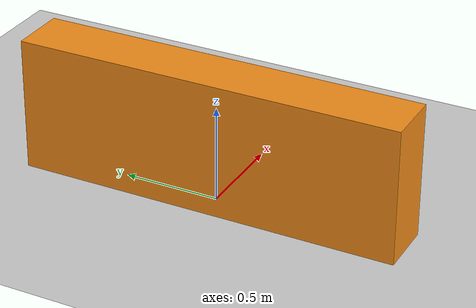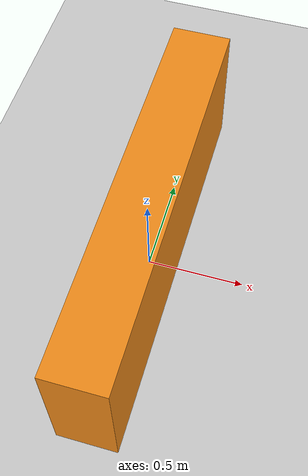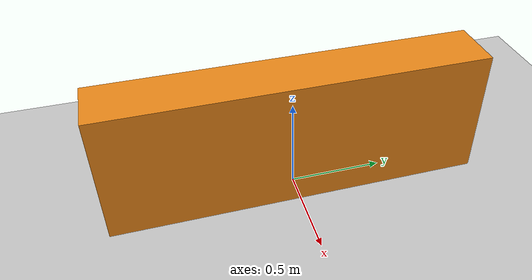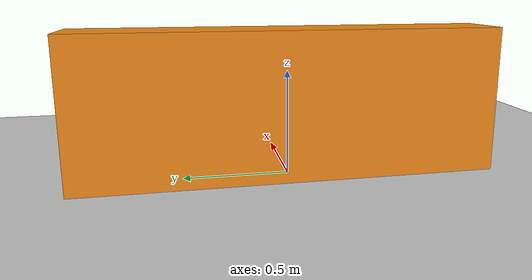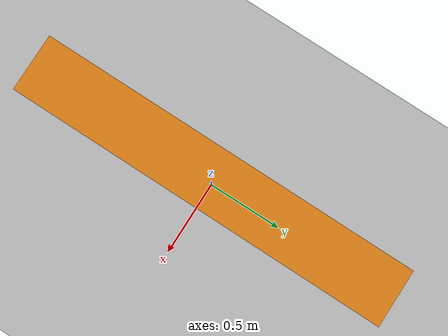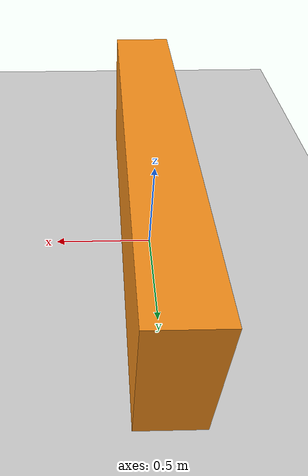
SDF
<?xml version="1.0" ?>
<sdf version="1.5">
  <world name="ground_contact_microtest">
    <plugin name="rotors_ros_interface_plugin"
            filename="librotors_gazebo_ros_interface_plugin.so" />
    <plugin name="ground_contact_diagnostic"
            filename="libground_contact_diagnostic_plugin.so" />
    <include><uri>model://sun</uri></include>
    <include><uri>model://ground_plane</uri></include>

    <!-- Identical explicit physics block to disaster_scene_a.world. -->
    <physics type="ode">
      <max_step_size>0.001</max_step_size>
      <real_time_update_rate>1000</real_time_update_rate>
    </physics>

    <!-- Collision geometry and pose relative to its own frame are identical to
         Scene A low_barrier; only the world x origin is shifted from 7 to 0. -->
    <model name="low_barrier">
      <static>true</static>
      <pose>0 0 0.35 0 0 0</pose>
      <link name="link">
        <collision name="collision">
          <geometry><box><size>0.30 2.0 0.70</size></box></geometry>
        </collision>
        <visual name="visual">
          <geometry><box><size>0.30 2.0 0.70</size></box></geometry>
          <material><script><uri>file://media/materials/scripts/gazebo.material</uri><name>Gazebo/Orange</name></script></material>
        </visual>
      </link>
    </model>
  </world>
</sdf>
